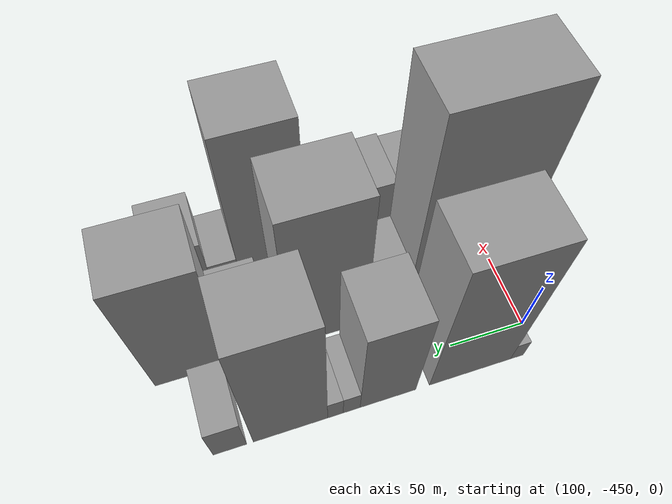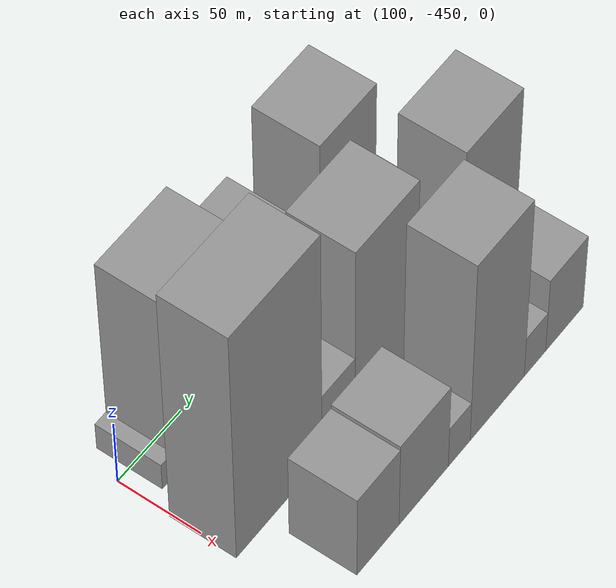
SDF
<sdf version="1.6">
 <world name="default">
  <model name="building_15">
   <static>1</static>
   <pose>100.0000 -436.5544 0 0.000000 0.000000 0.000000</pose>
   <link name="link">
    <pose>0 0 10.50 0 0 0</pose>
    <collision name="collision"><geometry><box><size>40.0000 8.9052 21.0000</size></box></geometry></collision>
    <visual name="visual">
     <cast_shadows>0</cast_shadows>
     <geometry><box><size>40.0000 8.9052 21.0000</size></box></geometry>
     <material>
      <script>
       <uri>model://grey_wall/materials/scripts</uri>
       <uri>model://grey_wall/materials/textures</uri>
       <name>vrc/grey_wall</name>
      </script>
     </material>
    </visual>
   </link>
  </model>
  <model name="building_16">
   <static>1</static>
   <pose>100.0000 -404.7646 0 0.000000 0.000000 0.000000</pose>
   <link name="link">
    <pose>0 0 72.00 0 0 0</pose>
    <collision name="collision"><geometry><box><size>40.0000 54.6743 144.0000</size></box></geometry></collision>
    <visual name="visual">
     <cast_shadows>0</cast_shadows>
     <geometry><box><size>40.0000 54.6743 144.0000</size></box></geometry>
     <material>
      <script>
       <uri>model://grey_wall/materials/scripts</uri>
       <uri>model://grey_wall/materials/textures</uri>
       <name>vrc/grey_wall</name>
      </script>
     </material>
    </visual>
   </link>
  </model>
  <model name="building_17">
   <static>1</static>
   <pose>100.0000 -350.3334 0 0.000000 0.000000 0.000000</pose>
   <link name="link">
    <pose>0 0 51.00 0 0 0</pose>
    <collision name="collision"><geometry><box><size>40.0000 36.1881 102.0000</size></box></geometry></collision>
    <visual name="visual">
     <cast_shadows>0</cast_shadows>
     <geometry><box><size>40.0000 36.1881 102.0000</size></box></geometry>
     <material>
      <script>
       <uri>model://grey_wall/materials/scripts</uri>
       <uri>model://grey_wall/materials/textures</uri>
       <name>vrc/grey_wall</name>
      </script>
     </material>
    </visual>
   </link>
  </model>
  <model name="building_18">
   <static>1</static>
   <pose>100.0000 -326.8579 0 0.000000 0.000000 0.000000</pose>
   <link name="link">
    <pose>0 0 12.00 0 0 0</pose>
    <collision name="collision"><geometry><box><size>40.0000 10.7630 24.0000</size></box></geometry></collision>
    <visual name="visual">
     <cast_shadows>0</cast_shadows>
     <geometry><box><size>40.0000 10.7630 24.0000</size></box></geometry>
     <material>
      <script>
       <uri>model://grey_wall/materials/scripts</uri>
       <uri>model://grey_wall/materials/textures</uri>
       <name>vrc/grey_wall</name>
      </script>
     </material>
    </visual>
   </link>
  </model>
  <model name="building_19">
   <static>1</static>
   <pose>100.0000 -316.5767 0 0.000000 0.000000 0.000000</pose>
   <link name="link">
    <pose>0 0 12.00 0 0 0</pose>
    <collision name="collision"><geometry><box><size>40.0000 9.7994 24.0000</size></box></geometry></collision>
    <visual name="visual">
     <cast_shadows>0</cast_shadows>
     <geometry><box><size>40.0000 9.7994 24.0000</size></box></geometry>
     <material>
      <script>
       <uri>model://grey_wall/materials/scripts</uri>
       <uri>model://grey_wall/materials/textures</uri>
       <name>vrc/grey_wall</name>
      </script>
     </material>
    </visual>
   </link>
  </model>
  <model name="building_20">
   <static>1</static>
   <pose>100.0000 -288.7271 0 0.000000 0.000000 0.000000</pose>
   <link name="link">
    <pose>0 0 67.50 0 0 0</pose>
    <collision name="collision"><geometry><box><size>40.0000 45.8998 135.0000</size></box></geometry></collision>
    <visual name="visual">
     <cast_shadows>0</cast_shadows>
     <geometry><box><size>40.0000 45.8998 135.0000</size></box></geometry>
     <material>
      <script>
       <uri>model://grey_wall/materials/scripts</uri>
       <uri>model://grey_wall/materials/textures</uri>
       <name>vrc/grey_wall</name>
      </script>
     </material>
    </visual>
   </link>
  </model>
  <model name="building_21">
   <static>1</static>
   <pose>100.0000 -251.6912 0 0.000000 0.000000 0.000000</pose>
   <link name="link">
    <pose>0 0 19.50 0 0 0</pose>
    <collision name="collision"><geometry><box><size>40.0000 20.1721 39.0000</size></box></geometry></collision>
    <visual name="visual">
     <cast_shadows>0</cast_shadows>
     <geometry><box><size>40.0000 20.1721 39.0000</size></box></geometry>
     <material>
      <script>
       <uri>model://grey_wall/materials/scripts</uri>
       <uri>model://grey_wall/materials/textures</uri>
       <name>vrc/grey_wall</name>
      </script>
     </material>
    </visual>
   </link>
  </model>
  <model name="building_62">
   <static>1</static>
   <pose>152.0000 -416.5960 0 0.000000 0.000000 0.000000</pose>
   <link name="link">
    <pose>0 0 93.00 0 0 0</pose>
    <collision name="collision"><geometry><box><size>40.0000 69.2770 186.0000</size></box></geometry></collision>
    <visual name="visual">
     <cast_shadows>0</cast_shadows>
     <geometry><box><size>40.0000 69.2770 186.0000</size></box></geometry>
     <material>
      <script>
       <uri>model://grey_wall/materials/scripts</uri>
       <uri>model://grey_wall/materials/textures</uri>
       <name>vrc/grey_wall</name>
      </script>
     </material>
    </visual>
   </link>
  </model>
  <model name="building_63">
   <static>1</static>
   <pose>152.0000 -368.4361 0 0.000000 0.000000 0.000000</pose>
   <link name="link">
    <pose>0 0 27.00 0 0 0</pose>
    <collision name="collision"><geometry><box><size>40.0000 27.0428 54.0000</size></box></geometry></collision>
    <visual name="visual">
     <cast_shadows>0</cast_shadows>
     <geometry><box><size>40.0000 27.0428 54.0000</size></box></geometry>
     <material>
      <script>
       <uri>model://grey_wall/materials/scripts</uri>
       <uri>model://grey_wall/materials/textures</uri>
       <name>vrc/grey_wall</name>
      </script>
     </material>
    </visual>
   </link>
  </model>
  <model name="building_64">
   <static>1</static>
   <pose>152.0000 -329.3221 0 0.000000 0.000000 0.000000</pose>
   <link name="link">
    <pose>0 0 70.50 0 0 0</pose>
    <collision name="collision"><geometry><box><size>40.0000 51.1853 141.0000</size></box></geometry></collision>
    <visual name="visual">
     <cast_shadows>0</cast_shadows>
     <geometry><box><size>40.0000 51.1853 141.0000</size></box></geometry>
     <material>
      <script>
       <uri>model://grey_wall/materials/scripts</uri>
       <uri>model://grey_wall/materials/textures</uri>
       <name>vrc/grey_wall</name>
      </script>
     </material>
    </visual>
   </link>
  </model>
  <model name="building_65">
   <static>1</static>
   <pose>152.0000 -299.2770 0 0.000000 0.000000 0.000000</pose>
   <link name="link">
    <pose>0 0 9.00 0 0 0</pose>
    <collision name="collision"><geometry><box><size>40.0000 8.9049 18.0000</size></box></geometry></collision>
    <visual name="visual">
     <cast_shadows>0</cast_shadows>
     <geometry><box><size>40.0000 8.9049 18.0000</size></box></geometry>
     <material>
      <script>
       <uri>model://grey_wall/materials/scripts</uri>
       <uri>model://grey_wall/materials/textures</uri>
       <name>vrc/grey_wall</name>
      </script>
     </material>
    </visual>
   </link>
  </model>
  <model name="building_66">
   <static>1</static>
   <pose>152.0000 -279.8591 0 0.000000 0.000000 0.000000</pose>
   <link name="link">
    <pose>0 0 25.50 0 0 0</pose>
    <collision name="collision"><geometry><box><size>40.0000 29.9308 51.0000</size></box></geometry></collision>
    <visual name="visual">
     <cast_shadows>0</cast_shadows>
     <geometry><box><size>40.0000 29.9308 51.0000</size></box></geometry>
     <material>
      <script>
       <uri>model://grey_wall/materials/scripts</uri>
       <uri>model://grey_wall/materials/textures</uri>
       <name>vrc/grey_wall</name>
      </script>
     </material>
    </visual>
   </link>
  </model>
  <model name="building_67">
   <static>1</static>
   <pose>152.0000 -241.0748 0 0.000000 0.000000 0.000000</pose>
   <link name="link">
    <pose>0 0 60.00 0 0 0</pose>
    <collision name="collision"><geometry><box><size>40.0000 47.6378 120.0000</size></box></geometry></collision>
    <visual name="visual">
     <cast_shadows>0</cast_shadows>
     <geometry><box><size>40.0000 47.6378 120.0000</size></box></geometry>
     <material>
      <script>
       <uri>model://grey_wall/materials/scripts</uri>
       <uri>model://grey_wall/materials/textures</uri>
       <name>vrc/grey_wall</name>
      </script>
     </material>
    </visual>
   </link>
  </model>
  <model name="building_110">
   <static>1</static>
   <pose>204.0000 -408.0279 0 0.000000 0.000000 0.000000</pose>
   <link name="link">
    <pose>0 0 33.00 0 0 0</pose>
    <collision name="collision"><geometry><box><size>40.0000 34.3746 66.0000</size></box></geometry></collision>
    <visual name="visual">
     <cast_shadows>0</cast_shadows>
     <geometry><box><size>40.0000 34.3746 66.0000</size></box></geometry>
     <material>
      <script>
       <uri>model://grey_wall/materials/scripts</uri>
       <uri>model://grey_wall/materials/textures</uri>
       <name>vrc/grey_wall</name>
      </script>
     </material>
    </visual>
   </link>
  </model>
  <model name="building_111">
   <static>1</static>
   <pose>204.0000 -370.3814 0 0.000000 0.000000 0.000000</pose>
   <link name="link">
    <pose>0 0 34.50 0 0 0</pose>
    <collision name="collision"><geometry><box><size>40.0000 40.9183 69.0000</size></box></geometry></collision>
    <visual name="visual">
     <cast_shadows>0</cast_shadows>
     <geometry><box><size>40.0000 40.9183 69.0000</size></box></geometry>
     <material>
      <script>
       <uri>model://grey_wall/materials/scripts</uri>
       <uri>model://grey_wall/materials/textures</uri>
       <name>vrc/grey_wall</name>
      </script>
     </material>
    </visual>
   </link>
  </model>
  <model name="building_112">
   <static>1</static>
   <pose>204.0000 -340.7332 0 0.000000 0.000000 0.000000</pose>
   <link name="link">
    <pose>0 0 16.50 0 0 0</pose>
    <collision name="collision"><geometry><box><size>40.0000 18.3780 33.0000</size></box></geometry></collision>
    <visual name="visual">
     <cast_shadows>0</cast_shadows>
     <geometry><box><size>40.0000 18.3780 33.0000</size></box></geometry>
     <material>
      <script>
       <uri>model://grey_wall/materials/scripts</uri>
       <uri>model://grey_wall/materials/textures</uri>
       <name>vrc/grey_wall</name>
      </script>
     </material>
    </visual>
   </link>
  </model>
  <model name="building_113">
   <static>1</static>
   <pose>204.0000 -308.4906 0 0.000000 0.000000 0.000000</pose>
   <link name="link">
    <pose>0 0 73.50 0 0 0</pose>
    <collision name="collision"><geometry><box><size>40.0000 46.1072 147.0000</size></box></geometry></collision>
    <visual name="visual">
     <cast_shadows>0</cast_shadows>
     <geometry><box><size>40.0000 46.1072 147.0000</size></box></geometry>
     <material>
      <script>
       <uri>model://grey_wall/materials/scripts</uri>
       <uri>model://grey_wall/materials/textures</uri>
       <name>vrc/grey_wall</name>
      </script>
     </material>
    </visual>
   </link>
  </model>
  <model name="building_114">
   <static>1</static>
   <pose>204.0000 -276.1419 0 0.000000 0.000000 0.000000</pose>
   <link name="link">
    <pose>0 0 16.50 0 0 0</pose>
    <collision name="collision"><geometry><box><size>40.0000 18.5903 33.0000</size></box></geometry></collision>
    <visual name="visual">
     <cast_shadows>0</cast_shadows>
     <geometry><box><size>40.0000 18.5903 33.0000</size></box></geometry>
     <material>
      <script>
       <uri>model://grey_wall/materials/scripts</uri>
       <uri>model://grey_wall/materials/textures</uri>
       <name>vrc/grey_wall</name>
      </script>
     </material>
    </visual>
   </link>
  </model>
  <model name="building_115">
   <static>1</static>
   <pose>204.0000 -250.4800 0 0.000000 0.000000 0.000000</pose>
   <link name="link">
    <pose>0 0 30.00 0 0 0</pose>
    <collision name="collision"><geometry><box><size>40.0000 32.7336 60.0000</size></box></geometry></collision>
    <visual name="visual">
     <cast_shadows>0</cast_shadows>
     <geometry><box><size>40.0000 32.7336 60.0000</size></box></geometry>
     <material>
      <script>
       <uri>model://grey_wall/materials/scripts</uri>
       <uri>model://grey_wall/materials/textures</uri>
       <name>vrc/grey_wall</name>
      </script>
     </material>
    </visual>
   </link>
  </model>
 </world>
</sdf>
